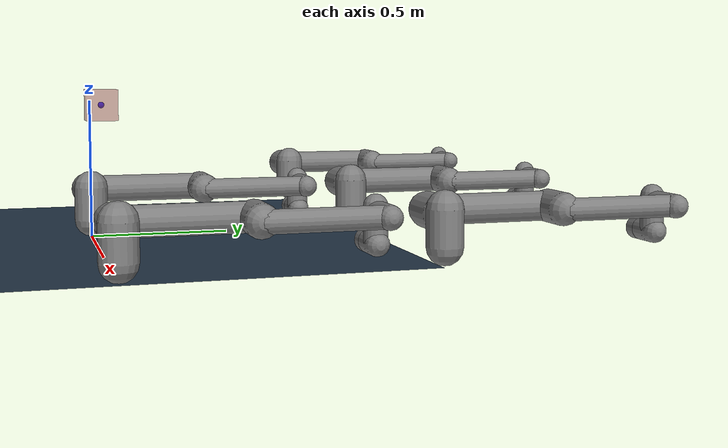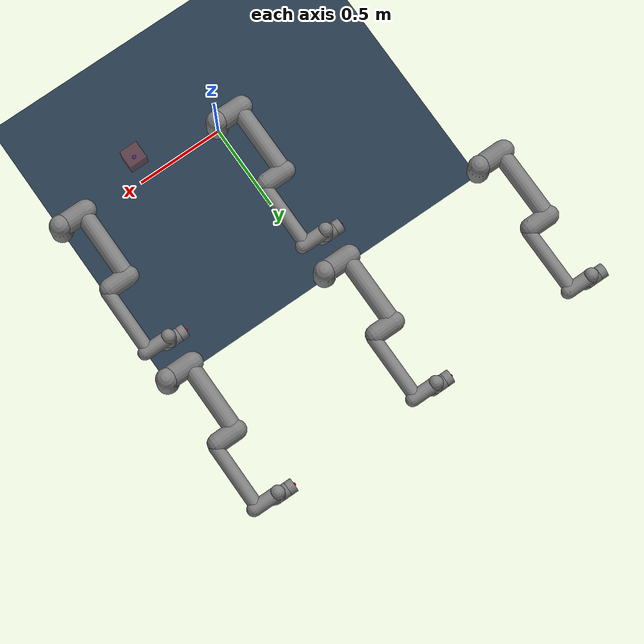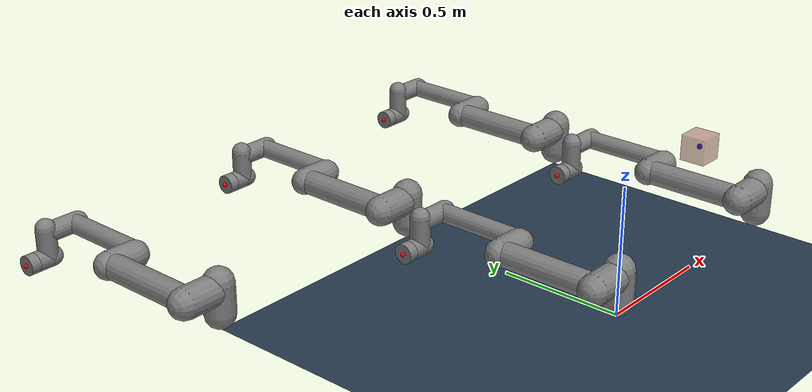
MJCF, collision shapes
<mujoco model="ur5e scene">
  <include file="combined_model.xml" />

  <statistic center="0.3 0 0.3" extent="0.8" />

  <visual>
    <headlight diffuse="0.6 0.6 0.6" ambient="0.1 0.1 0.1" specular="0 0 0" />
    <global azimuth="120" elevation="-20" />
  </visual>

  <asset>
    <texture name="grid" type="2d" builtin="checker" rgb1=".2 .3 .4" rgb2=".1 0.15 0.2" width="512" height="512" mark="cross" markrgb=".8 .8 .8" />
    <material name="grid" texture="grid" texrepeat="1 1" texuniform="true" />
  </asset>

  <worldbody>
    <light pos="0 0 1.5" directional="true" />
    <geom name="floor" size="1 1 0.01" type="plane" material="grid" />
    <body name="target" pos="0.5 0 .5" quat="0 1 0 0" mocap="true">
      <geom type="box" size=".05 .05 .05" contype="0" conaffinity="0" rgba=".6 .3 .3 .5" />
      <site type="sphere" size="0.01" rgba="0 0 1 1" group="1" />
    </body>
  </worldbody>
</mujoco>

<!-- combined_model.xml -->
<mujoco><compiler angle="radian" meshdir="assets" autolimits="true" />

  <option integrator="implicitfast" />

  <asset>
    <material name="black" rgba="0.033 0.033 0.033 1" />
    <material name="jointgray" rgba="0.278 0.278 0.278 1" />
    <material name="linkgray" rgba="0.82 0.82 0.82 1" />
    <material name="urblue" rgba="0.49 0.678 0.8 1" />

    <mesh file="base_0.obj" />
    <mesh file="base_1.obj" />
    <mesh file="shoulder_0.obj" />
    <mesh file="shoulder_1.obj" />
    <mesh file="shoulder_2.obj" />
    <mesh file="upperarm_0.obj" />
    <mesh file="upperarm_1.obj" />
    <mesh file="upperarm_2.obj" />
    <mesh file="upperarm_3.obj" />
    <mesh file="forearm_0.obj" />
    <mesh file="forearm_1.obj" />
    <mesh file="forearm_2.obj" />
    <mesh file="forearm_3.obj" />
    <mesh file="wrist1_0.obj" />
    <mesh file="wrist1_1.obj" />
    <mesh file="wrist1_2.obj" />
    <mesh file="wrist2_0.obj" />
    <mesh file="wrist2_1.obj" />
    <mesh file="wrist2_2.obj" />
    <mesh file="wrist3.obj" />
  </asset>

  <worldbody><body name="base_copy_0" quat="1 0 0 1" childclass="ur5e" pos="0 0 0">
      <inertial mass="4" pos="0 0 0" diaginertia="0.00443333156 0.00443333156 0.0072" />
      <geom mesh="base_0" material="black" class="visual" />
      <geom mesh="base_1" material="jointgray" class="visual" />
      <body name="shoulder_link_copy_0" pos="0 0 0.163">
        <inertial mass="3.7" pos="0 0 0" diaginertia="0.0102675 0.0102675 0.00666" />
        <joint name="shoulder_pan_copy_0" axis="0 0 1" />
        <geom mesh="shoulder_0" material="urblue" class="visual" />
        <geom mesh="shoulder_1" material="black" class="visual" />
        <geom mesh="shoulder_2" material="jointgray" class="visual" />
        <geom class="collision" size="0.06 0.06" pos="0 0 -0.04" />
        <body name="upper_arm_link_copy_0" pos="0 0.138 0" quat="1 0 1 0">
          <inertial mass="8.393" pos="0 0 0.2125" diaginertia="0.133886 0.133886 0.0151074" />
          <joint name="shoulder_lift_copy_0" />
          <geom mesh="upperarm_0" material="linkgray" class="visual" />
          <geom mesh="upperarm_1" material="black" class="visual" />
          <geom mesh="upperarm_2" material="jointgray" class="visual" />
          <geom mesh="upperarm_3" material="urblue" class="visual" />
          <geom class="collision" pos="0 -0.04 0" quat="1 1 0 0" size="0.06 0.06" />
          <geom class="collision" size="0.05 0.2" pos="0 0 0.2" />
          <body name="forearm_link_copy_0" pos="0 -0.131 0.425">
            <inertial mass="2.275" pos="0 0 0.196" diaginertia="0.0311796 0.0311796 0.004095" />
            <joint name="elbow_copy_0" class="joint_limited" />
            <geom mesh="forearm_0" material="urblue" class="visual" />
            <geom mesh="forearm_1" material="linkgray" class="visual" />
            <geom mesh="forearm_2" material="black" class="visual" />
            <geom mesh="forearm_3" material="jointgray" class="visual" />
            <geom class="collision" pos="0 0.08 0" quat="1 1 0 0" size="0.055 0.06" />
            <geom class="collision" size="0.038 0.19" pos="0 0 0.2" />
            <body name="wrist_1_link_copy_0" pos="0 0 0.392" quat="1 0 1 0">
              <inertial mass="1.219" pos="0 0.127 0" diaginertia="0.0025599 0.0025599 0.0021942" />
              <joint name="wrist_1_copy_0" />
              <geom mesh="wrist1_0" material="black" class="visual" />
              <geom mesh="wrist1_1" material="urblue" class="visual" />
              <geom mesh="wrist1_2" material="jointgray" class="visual" />
              <geom class="collision" pos="0 0.05 0" quat="1 1 0 0" size="0.04 0.07" />
              <body name="wrist_2_link_copy_0" pos="0 0.127 0">
                <inertial mass="1.219" pos="0 0 0.1" diaginertia="0.0025599 0.0025599 0.0021942" />
                <joint name="wrist_2_copy_0" axis="0 0 1" />
                <geom mesh="wrist2_0" material="black" class="visual" />
                <geom mesh="wrist2_1" material="urblue" class="visual" />
                <geom mesh="wrist2_2" material="jointgray" class="visual" />
                <geom class="collision" size="0.04 0.06" pos="0 0 0.04" />
                <geom class="collision" pos="0 0.02 0.1" quat="1 1 0 0" size="0.04 0.04" />
                <body name="wrist_3_link_copy_0" pos="0 0 0.1">
                  <inertial mass="0.1879" pos="0 0.0771683 0" quat="1 0 0 1" diaginertia="0.000132134 9.90863e-05 9.90863e-05" />
                  <joint name="wrist_3_copy_0" />
                  <geom material="linkgray" mesh="wrist3" class="visual" />
                  <geom class="eef_collision" pos="0 0.08 0" quat="1 1 0 0" size="0.04 0.02" />
                  <body name="attachment_copy_0" pos="0 0.1 0" quat="-1 1 1 1">
                    <site name="attachment_site_copy_0" rgba="1 0 0 1" size="0.01" group="1" />
                  </body>
                </body>
              </body>
            </body>
          </body>
        </body>
      </body>
    </body>
  <body name="base_copy_1" quat="1 0 0 1" childclass="ur5e" pos="1 0 0">
      <inertial mass="4" pos="0 0 0" diaginertia="0.00443333156 0.00443333156 0.0072" />
      <geom mesh="base_0" material="black" class="visual" />
      <geom mesh="base_1" material="jointgray" class="visual" />
      <body name="shoulder_link_copy_1" pos="0 0 0.163">
        <inertial mass="3.7" pos="0 0 0" diaginertia="0.0102675 0.0102675 0.00666" />
        <joint name="shoulder_pan_copy_1" axis="0 0 1" />
        <geom mesh="shoulder_0" material="urblue" class="visual" />
        <geom mesh="shoulder_1" material="black" class="visual" />
        <geom mesh="shoulder_2" material="jointgray" class="visual" />
        <geom class="collision" size="0.06 0.06" pos="0 0 -0.04" />
        <body name="upper_arm_link_copy_1" pos="0 0.138 0" quat="1 0 1 0">
          <inertial mass="8.393" pos="0 0 0.2125" diaginertia="0.133886 0.133886 0.0151074" />
          <joint name="shoulder_lift_copy_1" />
          <geom mesh="upperarm_0" material="linkgray" class="visual" />
          <geom mesh="upperarm_1" material="black" class="visual" />
          <geom mesh="upperarm_2" material="jointgray" class="visual" />
          <geom mesh="upperarm_3" material="urblue" class="visual" />
          <geom class="collision" pos="0 -0.04 0" quat="1 1 0 0" size="0.06 0.06" />
          <geom class="collision" size="0.05 0.2" pos="0 0 0.2" />
          <body name="forearm_link_copy_1" pos="0 -0.131 0.425">
            <inertial mass="2.275" pos="0 0 0.196" diaginertia="0.0311796 0.0311796 0.004095" />
            <joint name="elbow_copy_1" class="joint_limited" />
            <geom mesh="forearm_0" material="urblue" class="visual" />
            <geom mesh="forearm_1" material="linkgray" class="visual" />
            <geom mesh="forearm_2" material="black" class="visual" />
            <geom mesh="forearm_3" material="jointgray" class="visual" />
            <geom class="collision" pos="0 0.08 0" quat="1 1 0 0" size="0.055 0.06" />
            <geom class="collision" size="0.038 0.19" pos="0 0 0.2" />
            <body name="wrist_1_link_copy_1" pos="0 0 0.392" quat="1 0 1 0">
              <inertial mass="1.219" pos="0 0.127 0" diaginertia="0.0025599 0.0025599 0.0021942" />
              <joint name="wrist_1_copy_1" />
              <geom mesh="wrist1_0" material="black" class="visual" />
              <geom mesh="wrist1_1" material="urblue" class="visual" />
              <geom mesh="wrist1_2" material="jointgray" class="visual" />
              <geom class="collision" pos="0 0.05 0" quat="1 1 0 0" size="0.04 0.07" />
              <body name="wrist_2_link_copy_1" pos="0 0.127 0">
                <inertial mass="1.219" pos="0 0 0.1" diaginertia="0.0025599 0.0025599 0.0021942" />
                <joint name="wrist_2_copy_1" axis="0 0 1" />
                <geom mesh="wrist2_0" material="black" class="visual" />
                <geom mesh="wrist2_1" material="urblue" class="visual" />
                <geom mesh="wrist2_2" material="jointgray" class="visual" />
                <geom class="collision" size="0.04 0.06" pos="0 0 0.04" />
                <geom class="collision" pos="0 0.02 0.1" quat="1 1 0 0" size="0.04 0.04" />
                <body name="wrist_3_link_copy_1" pos="0 0 0.1">
                  <inertial mass="0.1879" pos="0 0.0771683 0" quat="1 0 0 1" diaginertia="0.000132134 9.90863e-05 9.90863e-05" />
                  <joint name="wrist_3_copy_1" />
                  <geom material="linkgray" mesh="wrist3" class="visual" />
                  <geom class="eef_collision" pos="0 0.08 0" quat="1 1 0 0" size="0.04 0.02" />
                  <body name="attachment_copy_1" pos="0 0.1 0" quat="-1 1 1 1">
                    <site name="attachment_site_copy_1" rgba="1 0 0 1" size="0.01" group="1" />
                  </body>
                </body>
              </body>
            </body>
          </body>
        </body>
      </body>
    </body>
  <body name="base_copy_2" quat="1 0 0 1" childclass="ur5e" pos="1 1 0">
      <inertial mass="4" pos="0 0 0" diaginertia="0.00443333156 0.00443333156 0.0072" />
      <geom mesh="base_0" material="black" class="visual" />
      <geom mesh="base_1" material="jointgray" class="visual" />
      <body name="shoulder_link_copy_2" pos="0 0 0.163">
        <inertial mass="3.7" pos="0 0 0" diaginertia="0.0102675 0.0102675 0.00666" />
        <joint name="shoulder_pan_copy_2" axis="0 0 1" />
        <geom mesh="shoulder_0" material="urblue" class="visual" />
        <geom mesh="shoulder_1" material="black" class="visual" />
        <geom mesh="shoulder_2" material="jointgray" class="visual" />
        <geom class="collision" size="0.06 0.06" pos="0 0 -0.04" />
        <body name="upper_arm_link_copy_2" pos="0 0.138 0" quat="1 0 1 0">
          <inertial mass="8.393" pos="0 0 0.2125" diaginertia="0.133886 0.133886 0.0151074" />
          <joint name="shoulder_lift_copy_2" />
          <geom mesh="upperarm_0" material="linkgray" class="visual" />
          <geom mesh="upperarm_1" material="black" class="visual" />
          <geom mesh="upperarm_2" material="jointgray" class="visual" />
          <geom mesh="upperarm_3" material="urblue" class="visual" />
          <geom class="collision" pos="0 -0.04 0" quat="1 1 0 0" size="0.06 0.06" />
          <geom class="collision" size="0.05 0.2" pos="0 0 0.2" />
          <body name="forearm_link_copy_2" pos="0 -0.131 0.425">
            <inertial mass="2.275" pos="0 0 0.196" diaginertia="0.0311796 0.0311796 0.004095" />
            <joint name="elbow_copy_2" class="joint_limited" />
            <geom mesh="forearm_0" material="urblue" class="visual" />
            <geom mesh="forearm_1" material="linkgray" class="visual" />
            <geom mesh="forearm_2" material="black" class="visual" />
            <geom mesh="forearm_3" material="jointgray" class="visual" />
            <geom class="collision" pos="0 0.08 0" quat="1 1 0 0" size="0.055 0.06" />
            <geom class="collision" size="0.038 0.19" pos="0 0 0.2" />
            <body name="wrist_1_link_copy_2" pos="0 0 0.392" quat="1 0 1 0">
              <inertial mass="1.219" pos="0 0.127 0" diaginertia="0.0025599 0.0025599 0.0021942" />
              <joint name="wrist_1_copy_2" />
              <geom mesh="wrist1_0" material="black" class="visual" />
              <geom mesh="wrist1_1" material="urblue" class="visual" />
              <geom mesh="wrist1_2" material="jointgray" class="visual" />
              <geom class="collision" pos="0 0.05 0" quat="1 1 0 0" size="0.04 0.07" />
              <body name="wrist_2_link_copy_2" pos="0 0.127 0">
                <inertial mass="1.219" pos="0 0 0.1" diaginertia="0.0025599 0.0025599 0.0021942" />
                <joint name="wrist_2_copy_2" axis="0 0 1" />
                <geom mesh="wrist2_0" material="black" class="visual" />
                <geom mesh="wrist2_1" material="urblue" class="visual" />
                <geom mesh="wrist2_2" material="jointgray" class="visual" />
                <geom class="collision" size="0.04 0.06" pos="0 0 0.04" />
                <geom class="collision" pos="0 0.02 0.1" quat="1 1 0 0" size="0.04 0.04" />
                <body name="wrist_3_link_copy_2" pos="0 0 0.1">
                  <inertial mass="0.1879" pos="0 0.0771683 0" quat="1 0 0 1" diaginertia="0.000132134 9.90863e-05 9.90863e-05" />
                  <joint name="wrist_3_copy_2" />
                  <geom material="linkgray" mesh="wrist3" class="visual" />
                  <geom class="eef_collision" pos="0 0.08 0" quat="1 1 0 0" size="0.04 0.02" />
                  <body name="attachment_copy_2" pos="0 0.1 0" quat="-1 1 1 1">
                    <site name="attachment_site_copy_2" rgba="1 0 0 1" size="0.01" group="1" />
                  </body>
                </body>
              </body>
            </body>
          </body>
        </body>
      </body>
    </body>
  <body name="base_copy_3" quat="1 0 0 1" childclass="ur5e" pos="0 1 0">
      <inertial mass="4" pos="0 0 0" diaginertia="0.00443333156 0.00443333156 0.0072" />
      <geom mesh="base_0" material="black" class="visual" />
      <geom mesh="base_1" material="jointgray" class="visual" />
      <body name="shoulder_link_copy_3" pos="0 0 0.163">
        <inertial mass="3.7" pos="0 0 0" diaginertia="0.0102675 0.0102675 0.00666" />
        <joint name="shoulder_pan_copy_3" axis="0 0 1" />
        <geom mesh="shoulder_0" material="urblue" class="visual" />
        <geom mesh="shoulder_1" material="black" class="visual" />
        <geom mesh="shoulder_2" material="jointgray" class="visual" />
        <geom class="collision" size="0.06 0.06" pos="0 0 -0.04" />
        <body name="upper_arm_link_copy_3" pos="0 0.138 0" quat="1 0 1 0">
          <inertial mass="8.393" pos="0 0 0.2125" diaginertia="0.133886 0.133886 0.0151074" />
          <joint name="shoulder_lift_copy_3" />
          <geom mesh="upperarm_0" material="linkgray" class="visual" />
          <geom mesh="upperarm_1" material="black" class="visual" />
          <geom mesh="upperarm_2" material="jointgray" class="visual" />
          <geom mesh="upperarm_3" material="urblue" class="visual" />
          <geom class="collision" pos="0 -0.04 0" quat="1 1 0 0" size="0.06 0.06" />
          <geom class="collision" size="0.05 0.2" pos="0 0 0.2" />
          <body name="forearm_link_copy_3" pos="0 -0.131 0.425">
            <inertial mass="2.275" pos="0 0 0.196" diaginertia="0.0311796 0.0311796 0.004095" />
            <joint name="elbow_copy_3" class="joint_limited" />
            <geom mesh="forearm_0" material="urblue" class="visual" />
            <geom mesh="forearm_1" material="linkgray" class="visual" />
            <geom mesh="forearm_2" material="black" class="visual" />
            <geom mesh="forearm_3" material="jointgray" class="visual" />
            <geom class="collision" pos="0 0.08 0" quat="1 1 0 0" size="0.055 0.06" />
            <geom class="collision" size="0.038 0.19" pos="0 0 0.2" />
            <body name="wrist_1_link_copy_3" pos="0 0 0.392" quat="1 0 1 0">
              <inertial mass="1.219" pos="0 0.127 0" diaginertia="0.0025599 0.0025599 0.0021942" />
              <joint name="wrist_1_copy_3" />
              <geom mesh="wrist1_0" material="black" class="visual" />
              <geom mesh="wrist1_1" material="urblue" class="visual" />
              <geom mesh="wrist1_2" material="jointgray" class="visual" />
              <geom class="collision" pos="0 0.05 0" quat="1 1 0 0" size="0.04 0.07" />
              <body name="wrist_2_link_copy_3" pos="0 0.127 0">
                <inertial mass="1.219" pos="0 0 0.1" diaginertia="0.0025599 0.0025599 0.0021942" />
                <joint name="wrist_2_copy_3" axis="0 0 1" />
                <geom mesh="wrist2_0" material="black" class="visual" />
                <geom mesh="wrist2_1" material="urblue" class="visual" />
                <geom mesh="wrist2_2" material="jointgray" class="visual" />
                <geom class="collision" size="0.04 0.06" pos="0 0 0.04" />
                <geom class="collision" pos="0 0.02 0.1" quat="1 1 0 0" size="0.04 0.04" />
                <body name="wrist_3_link_copy_3" pos="0 0 0.1">
                  <inertial mass="0.1879" pos="0 0.0771683 0" quat="1 0 0 1" diaginertia="0.000132134 9.90863e-05 9.90863e-05" />
                  <joint name="wrist_3_copy_3" />
                  <geom material="linkgray" mesh="wrist3" class="visual" />
                  <geom class="eef_collision" pos="0 0.08 0" quat="1 1 0 0" size="0.04 0.02" />
                  <body name="attachment_copy_3" pos="0 0.1 0" quat="-1 1 1 1">
                    <site name="attachment_site_copy_3" rgba="1 0 0 1" size="0.01" group="1" />
                  </body>
                </body>
              </body>
            </body>
          </body>
        </body>
      </body>
    </body>
  <body name="base_copy_4" quat="1 0 0 1" childclass="ur5e" pos="-1 1 0">
      <inertial mass="4" pos="0 0 0" diaginertia="0.00443333156 0.00443333156 0.0072" />
      <geom mesh="base_0" material="black" class="visual" />
      <geom mesh="base_1" material="jointgray" class="visual" />
      <body name="shoulder_link_copy_4" pos="0 0 0.163">
        <inertial mass="3.7" pos="0 0 0" diaginertia="0.0102675 0.0102675 0.00666" />
        <joint name="shoulder_pan_copy_4" axis="0 0 1" />
        <geom mesh="shoulder_0" material="urblue" class="visual" />
        <geom mesh="shoulder_1" material="black" class="visual" />
        <geom mesh="shoulder_2" material="jointgray" class="visual" />
        <geom class="collision" size="0.06 0.06" pos="0 0 -0.04" />
        <body name="upper_arm_link_copy_4" pos="0 0.138 0" quat="1 0 1 0">
          <inertial mass="8.393" pos="0 0 0.2125" diaginertia="0.133886 0.133886 0.0151074" />
          <joint name="shoulder_lift_copy_4" />
          <geom mesh="upperarm_0" material="linkgray" class="visual" />
          <geom mesh="upperarm_1" material="black" class="visual" />
          <geom mesh="upperarm_2" material="jointgray" class="visual" />
          <geom mesh="upperarm_3" material="urblue" class="visual" />
          <geom class="collision" pos="0 -0.04 0" quat="1 1 0 0" size="0.06 0.06" />
          <geom class="collision" size="0.05 0.2" pos="0 0 0.2" />
          <body name="forearm_link_copy_4" pos="0 -0.131 0.425">
            <inertial mass="2.275" pos="0 0 0.196" diaginertia="0.0311796 0.0311796 0.004095" />
            <joint name="elbow_copy_4" class="joint_limited" />
            <geom mesh="forearm_0" material="urblue" class="visual" />
            <geom mesh="forearm_1" material="linkgray" class="visual" />
            <geom mesh="forearm_2" material="black" class="visual" />
            <geom mesh="forearm_3" material="jointgray" class="visual" />
            <geom class="collision" pos="0 0.08 0" quat="1 1 0 0" size="0.055 0.06" />
            <geom class="collision" size="0.038 0.19" pos="0 0 0.2" />
            <body name="wrist_1_link_copy_4" pos="0 0 0.392" quat="1 0 1 0">
              <inertial mass="1.219" pos="0 0.127 0" diaginertia="0.0025599 0.0025599 0.0021942" />
              <joint name="wrist_1_copy_4" />
              <geom mesh="wrist1_0" material="black" class="visual" />
              <geom mesh="wrist1_1" material="urblue" class="visual" />
              <geom mesh="wrist1_2" material="jointgray" class="visual" />
              <geom class="collision" pos="0 0.05 0" quat="1 1 0 0" size="0.04 0.07" />
              <body name="wrist_2_link_copy_4" pos="0 0.127 0">
                <inertial mass="1.219" pos="0 0 0.1" diaginertia="0.0025599 0.0025599 0.0021942" />
                <joint name="wrist_2_copy_4" axis="0 0 1" />
                <geom mesh="wrist2_0" material="black" class="visual" />
                <geom mesh="wrist2_1" material="urblue" class="visual" />
                <geom mesh="wrist2_2" material="jointgray" class="visual" />
                <geom class="collision" size="0.04 0.06" pos="0 0 0.04" />
                <geom class="collision" pos="0 0.02 0.1" quat="1 1 0 0" size="0.04 0.04" />
                <body name="wrist_3_link_copy_4" pos="0 0 0.1">
                  <inertial mass="0.1879" pos="0 0.0771683 0" quat="1 0 0 1" diaginertia="0.000132134 9.90863e-05 9.90863e-05" />
                  <joint name="wrist_3_copy_4" />
                  <geom material="linkgray" mesh="wrist3" class="visual" />
                  <geom class="eef_collision" pos="0 0.08 0" quat="1 1 0 0" size="0.04 0.02" />
                  <body name="attachment_copy_4" pos="0 0.1 0" quat="-1 1 1 1">
                    <site name="attachment_site_copy_4" rgba="1 0 0 1" size="0.01" group="1" />
                  </body>
                </body>
              </body>
            </body>
          </body>
        </body>
      </body>
    </body>
  </worldbody><actuator><position class="position" name="shoulder_pan_copy_0" joint="shoulder_pan_copy_0" />
    <position class="position" name="shoulder_lift_copy_0" joint="shoulder_lift_copy_0" />
    <position class="position_limited" name="elbow_copy_0" joint="elbow_copy_0" />
    <position class="position_small" name="wrist_1_copy_0" joint="wrist_1_copy_0" />
    <position class="position_small" name="wrist_2_copy_0" joint="wrist_2_copy_0" />
    <position class="position_small" name="wrist_3_copy_0" joint="wrist_3_copy_0" />
  <position class="position" name="shoulder_pan_copy_1" joint="shoulder_pan_copy_1" />
    <position class="position" name="shoulder_lift_copy_1" joint="shoulder_lift_copy_1" />
    <position class="position_limited" name="elbow_copy_1" joint="elbow_copy_1" />
    <position class="position_small" name="wrist_1_copy_1" joint="wrist_1_copy_1" />
    <position class="position_small" name="wrist_2_copy_1" joint="wrist_2_copy_1" />
    <position class="position_small" name="wrist_3_copy_1" joint="wrist_3_copy_1" />
  <position class="position" name="shoulder_pan_copy_2" joint="shoulder_pan_copy_2" />
    <position class="position" name="shoulder_lift_copy_2" joint="shoulder_lift_copy_2" />
    <position class="position_limited" name="elbow_copy_2" joint="elbow_copy_2" />
    <position class="position_small" name="wrist_1_copy_2" joint="wrist_1_copy_2" />
    <position class="position_small" name="wrist_2_copy_2" joint="wrist_2_copy_2" />
    <position class="position_small" name="wrist_3_copy_2" joint="wrist_3_copy_2" />
  <position class="position" name="shoulder_pan_copy_3" joint="shoulder_pan_copy_3" />
    <position class="position" name="shoulder_lift_copy_3" joint="shoulder_lift_copy_3" />
    <position class="position_limited" name="elbow_copy_3" joint="elbow_copy_3" />
    <position class="position_small" name="wrist_1_copy_3" joint="wrist_1_copy_3" />
    <position class="position_small" name="wrist_2_copy_3" joint="wrist_2_copy_3" />
    <position class="position_small" name="wrist_3_copy_3" joint="wrist_3_copy_3" />
  <position class="position" name="shoulder_pan_copy_4" joint="shoulder_pan_copy_4" />
    <position class="position" name="shoulder_lift_copy_4" joint="shoulder_lift_copy_4" />
    <position class="position_limited" name="elbow_copy_4" joint="elbow_copy_4" />
    <position class="position_small" name="wrist_1_copy_4" joint="wrist_1_copy_4" />
    <position class="position_small" name="wrist_2_copy_4" joint="wrist_2_copy_4" />
    <position class="position_small" name="wrist_3_copy_4" joint="wrist_3_copy_4" />
  </actuator><keyframe>
    <key name="home" qpos="-1.5708 -1.5708 1.5708 -1.5708 -1.5708 0 -1.5708 -1.5708 1.5708 -1.5708 -1.5708 0 -1.5708 -1.5708 1.5708 -1.5708 -1.5708 0 -1.5708 -1.5708 1.5708 -1.5708 -1.5708 0 -1.5708 -1.5708 1.5708 -1.5708 -1.5708 0" ctrl="-1.5708 -1.5708 1.5708 -1.5708 -1.5708 0 -1.5708 -1.5708 1.5708 -1.5708 -1.5708 0 -1.5708 -1.5708 1.5708 -1.5708 -1.5708 0 -1.5708 -1.5708 1.5708 -1.5708 -1.5708 0 -1.5708 -1.5708 1.5708 -1.5708 -1.5708 0" />
  </keyframe>
<default>
    <default class="ur5e">
      <default class="visual">
        <geom type="mesh" contype="0" conaffinity="0" group="2" />
      </default>
      <default class="collision">
        <geom type="capsule" group="3" />
        <default class="eef_collision">
          <geom type="cylinder" />
        </default>
      </default>
      <joint axis="0 1 0" range="-6.28319 6.28319" />
      <default class="joint_limited">
        <joint range="-3.1415 3.1415" />
      </default>
      <default class="position">
        <position ctrlrange="-6.2831 6.2831" kp="2000" kv="200" forcerange="-150 150" />
        <default class="position_limited">
          <position ctrlrange="-3.1415 3.1415" />
        </default>
        <default class="position_small">
          <position kp="500" kv="50" forcerange="-28 28" />
        </default>
      </default>
    </default>
  </default>

  </mujoco>
